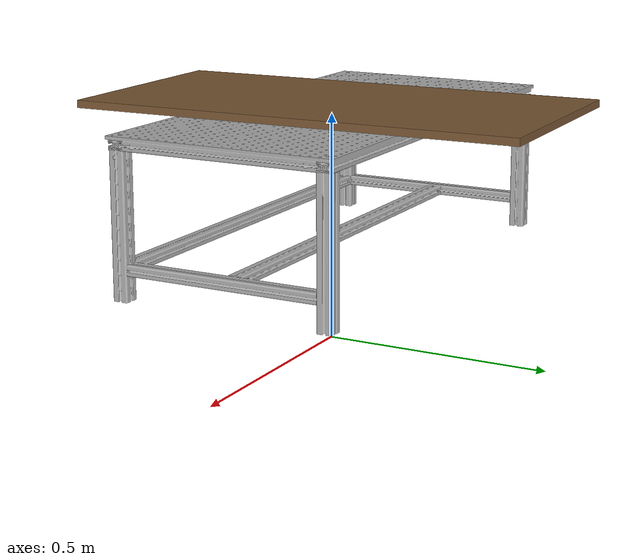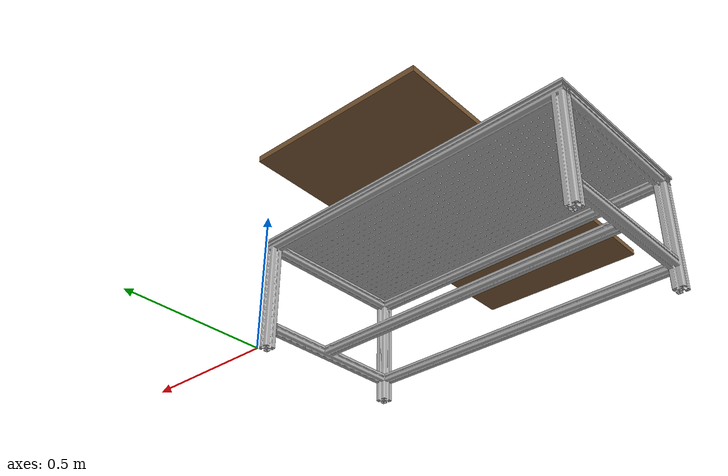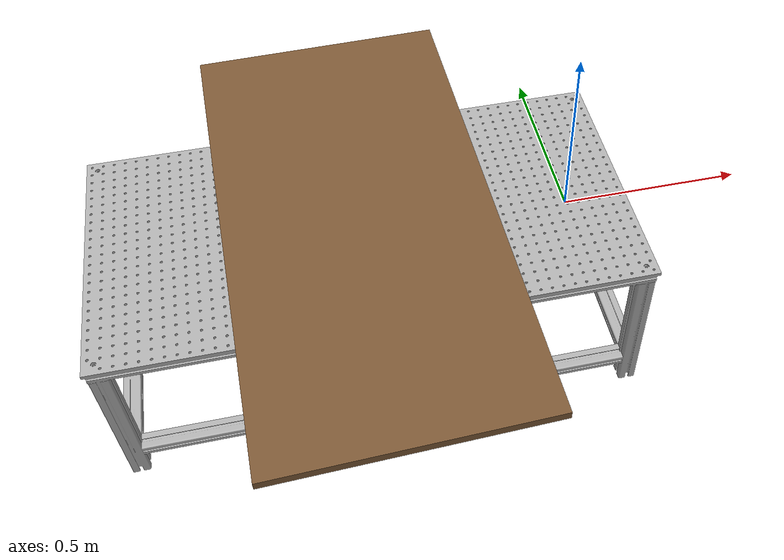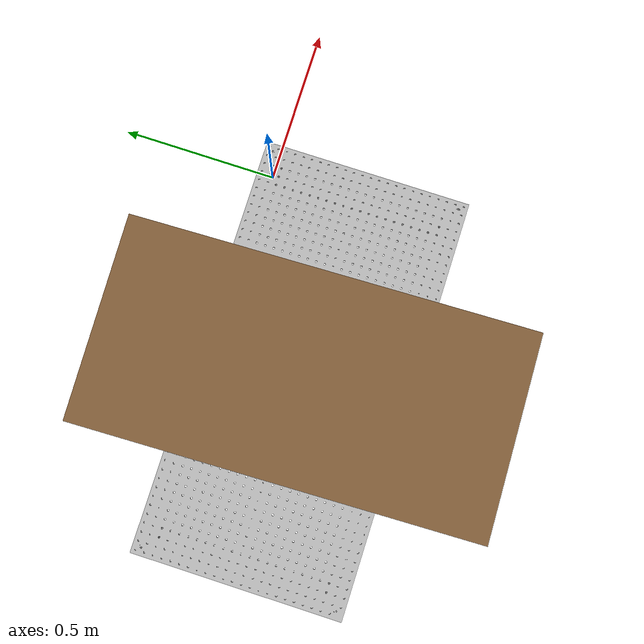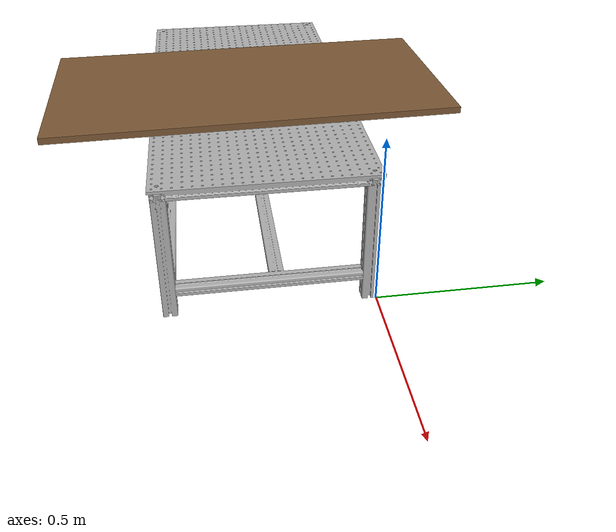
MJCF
<mujoco model="table">
    <asset>
        <mesh name="table" file="table.STL" scale="1.0 1.0 0.66"/>
        <texture name="wood" type="2d" file="../../textures/wood.png"/>
        <material name="wood" texture="wood" texrepeat="1 1" texuniform="true" rgba="0.68 0.68 0.68 1"/>
    </asset>

    <worldbody>
        <body name="table_0">
            <geom pos="-0.6 -0.3 0.411" contype="0" conaffinity="0" group="1" euler = "0 0 1.57" type="box" size="0.3 0.6 0.01" material="wood"/>
            <geom pos="-0.6 -0.3 0.411" conaffinity="1" condim="3" contype="0" group="4" euler = "0 0 1.57" type="box" size="0.3 0.6 0.01" />
            <geom type="mesh" contype="0" conaffinity="0" group="1" rgba="0.68 0.68 0.68 1" mesh="table" friction="0.95 0.9 0.9"/>
            <geom type="mesh" conaffinity="1" condim="3" contype="0" group="4" rgba="0.68 0.68 0.68 1" mesh="table" friction="0.95 0.9 0.9"/>
        </body>
    </worldbody>
</mujoco>
